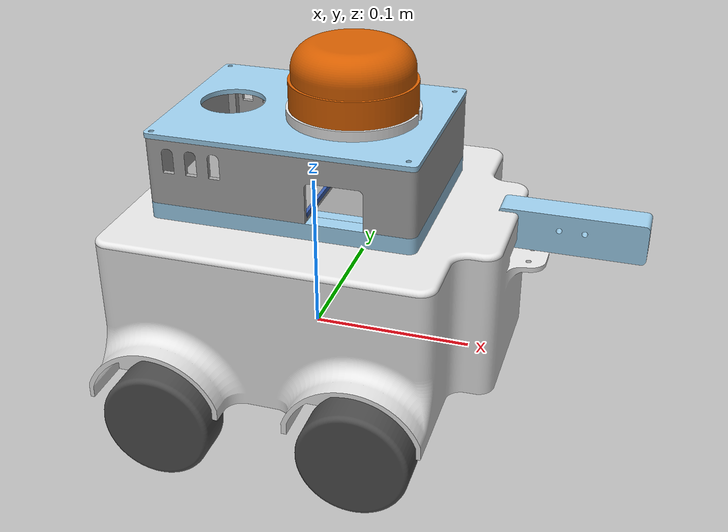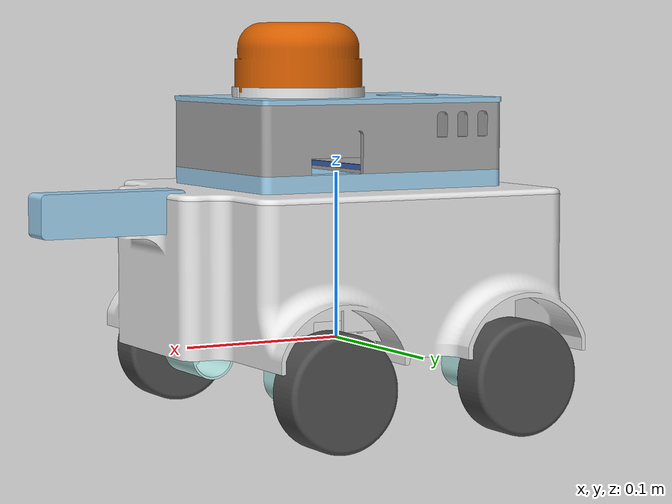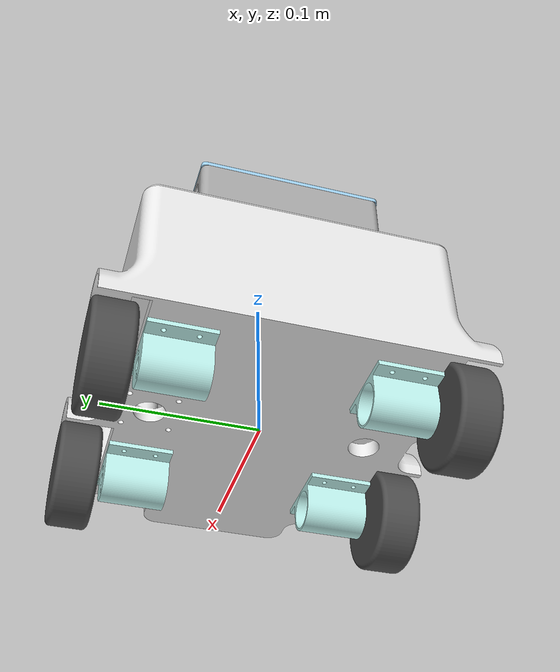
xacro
<?xml version="1.0"?>
<robot xmlns:xacro="http://www.ros.org/wiki/xacro" name="config">

  <!-- ========== CONSTANTS ========== -->
  <xacro:property name="M_PI" value="3.141592653589793" />
  <xacro:property name="wheel_mass" value="1e-09" />
  <xacro:property name="sensor_mass" value="1e-05" />

  <!-- ========== MATERIALS ========== -->
  <material name="lidar_holder_material">
    <color rgba="0.901961 0.901961 0.901961 1.0"/>
  </material>
  <material name="orin_cover_material">
    <color rgba="0.647059 0.647059 0.647059 1.0"/>
  </material>
  <material name="orin_lid_material">
    <color rgba="0.615686 0.811765 0.929412 1.0"/>
  </material>
  <material name="orin_floor_2_material">
    <color rgba="0.647059 0.647059 0.647059 1.0"/>
  </material>
  <material name="orin_floor_1_material">
    <color rgba="0.615686 0.811765 0.929412 1.0"/>
  </material>
  <material name="camera_material">
    <color rgba="0.615686 0.811765 0.929412 1.0"/>
  </material>
  <material name="motor_holder_material">
    <color rgba="0.737255 0.937255 0.917647 1.0"/>
  </material>
  <material name="board_material">
    <color rgba="0.615686 0.811765 0.929412 1.0"/>
  </material>
  <material name="base_link_material">
    <color rgba="0.901961 0.901961 0.901961 1.0"/>
  </material>
  <material name="up_plate_material">
    <color rgba="0.901961 0.901961 0.901961 1.0"/>
  </material>
  <material name="edge_material">
    <color rgba="0.231373 0.380392 0.705882 1.0"/>
  </material>
  <material name="lidar_link_material">
    <color rgba="0.262745 0.282353 0.301961 1.0"/>
  </material>
  <material name="wheel_material">
    <color rgba="0.301961 0.301961 0.301961 1.0"/>
  </material>

  <!-- ========== BASE LINK ========== -->
  <link name="base_link">
    <inertial>
      <origin xyz="0 0 0" rpy="0 0 0"/>
      <mass value="1e-09"/>
      <inertia ixx="1e-09" ixy="0" ixz="0" iyy="1e-09" iyz="0" izz="1e-09"/>
    </inertial>

    <!-- Lidar Holder -->
    <visual>
      <origin xyz="0.026071 -7.10678e-05 0.146" rpy="-9.86076e-32 9.86076e-32 -${M_PI}"/>
      <geometry>
        <mesh filename="package://puppet/meshes/lidar_holder.stl"/>
      </geometry>
      <material name="lidar_holder_material"/>
    </visual>
    <collision>
      <origin xyz="0.026071 -7.10678e-05 0.146" rpy="-9.86076e-32 9.86076e-32 -${M_PI}"/>
      <geometry>
        <mesh filename="package://puppet/meshes/lidar_holder.stl"/>
      </geometry>
    </collision>

    <!-- Orin Cover -->
    <visual>
      <origin xyz="-0.00942666 -0.0174236 0.093" rpy="0 0 ${M_PI}"/>
      <geometry>
        <mesh filename="package://puppet/meshes/orin_cover.stl"/>
      </geometry>
      <material name="orin_cover_material"/>
    </visual>
    <collision>
      <origin xyz="-0.00942666 -0.0174236 0.093" rpy="0 0 ${M_PI}"/>
      <geometry>
        <mesh filename="package://puppet/meshes/orin_cover.stl"/>
      </geometry>
    </collision>

    <!-- Orin Lid -->
    <visual>
      <origin xyz="0.0204439 -0.00516532 0.143" rpy="0 0 ${M_PI}"/>
      <geometry>
        <mesh filename="package://puppet/meshes/orin_lid.stl"/>
      </geometry>
      <material name="orin_lid_material"/>
    </visual>
    <collision>
      <origin xyz="0.0204439 -0.00516532 0.143" rpy="0 0 ${M_PI}"/>
      <geometry>
        <mesh filename="package://puppet/meshes/orin_lid.stl"/>
      </geometry>
    </collision>

    <!-- Orin Floor 2 -->
    <visual>
      <origin xyz="-0.00942666 -0.0174236 0.093" rpy="0 0 ${M_PI}"/>
      <geometry>
        <mesh filename="package://puppet/meshes/orin_floor_2.stl"/>
      </geometry>
      <material name="orin_floor_2_material"/>
    </visual>
    <collision>
      <origin xyz="-0.00942666 -0.0174236 0.093" rpy="0 0 ${M_PI}"/>
      <geometry>
        <mesh filename="package://puppet/meshes/orin_floor_2.stl"/>
      </geometry>
    </collision>

    <!-- Orin Floor 1 -->
    <visual>
      <origin xyz="-0.00942666 -0.0174236 0.093" rpy="0 0 ${M_PI}"/>
      <geometry>
        <mesh filename="package://puppet/meshes/orin_floor_1.stl"/>
      </geometry>
      <material name="orin_floor_1_material"/>
    </visual>
    <collision>
      <origin xyz="-0.00942666 -0.0174236 0.093" rpy="0 0 ${M_PI}"/>
      <geometry>
        <mesh filename="package://puppet/meshes/orin_floor_1.stl"/>
      </geometry>
    </collision>

    <!-- Motor Holder (Front Right) -->
    <visual>
      <origin xyz="0.06 -0.0877 -0.0141" rpy="${M_PI/2} 0 ${M_PI}"/>
      <geometry>
        <mesh filename="package://puppet/meshes/motor_holder.stl"/>
      </geometry>
      <material name="motor_holder_material"/>
    </visual>
    <collision>
      <origin xyz="0.06 -0.0877 -0.0141" rpy="${M_PI/2} 0 ${M_PI}"/>
      <geometry>
        <mesh filename="package://puppet/meshes/motor_holder.stl"/>
      </geometry>
    </collision>

    <!-- Motor Holder (Front Left) -->
    <visual>
      <origin xyz="-0.06 -0.0877 -0.0141" rpy="${M_PI/2} 0 ${M_PI}"/>
      <geometry>
        <mesh filename="package://puppet/meshes/motor_holder.stl"/>
      </geometry>
      <material name="motor_holder_material"/>
    </visual>
    <collision>
      <origin xyz="-0.06 -0.0877 -0.0141" rpy="${M_PI/2} 0 ${M_PI}"/>
      <geometry>
        <mesh filename="package://puppet/meshes/motor_holder.stl"/>
      </geometry>
    </collision>

    <!-- Motor Holder (Rear Right) -->
    <visual>
      <origin xyz="-0.06 0.0877 -0.0141" rpy="${M_PI/2} 0 0"/>
      <geometry>
        <mesh filename="package://puppet/meshes/motor_holder.stl"/>
      </geometry>
      <material name="motor_holder_material"/>
    </visual>
    <collision>
      <origin xyz="-0.06 0.0877 -0.0141" rpy="${M_PI/2} 0 0"/>
      <geometry>
        <mesh filename="package://puppet/meshes/motor_holder.stl"/>
      </geometry>
    </collision>

    <!-- Motor Holder (Rear Left) -->
    <visual>
      <origin xyz="0.06 0.0877 -0.0141" rpy="${M_PI/2} 0 0"/>
      <geometry>
        <mesh filename="package://puppet/meshes/motor_holder.stl"/>
      </geometry>
      <material name="motor_holder_material"/>
    </visual>
    <collision>
      <origin xyz="0.06 0.0877 -0.0141" rpy="${M_PI/2} 0 0"/>
      <geometry>
        <mesh filename="package://puppet/meshes/motor_holder.stl"/>
      </geometry>
    </collision>

    <!-- Board -->
    <visual>
      <origin xyz="-0.0235 -1.38778e-17 0.053" rpy="${M_PI} 0 ${M_PI}"/>
      <geometry>
        <mesh filename="package://puppet/meshes/board.stl"/>
      </geometry>
      <material name="board_material"/>
    </visual>
    <collision>
      <origin xyz="-0.0235 -1.38778e-17 0.053" rpy="${M_PI} 0 ${M_PI}"/>
      <geometry>
        <mesh filename="package://puppet/meshes/board.stl"/>
      </geometry>
    </collision>

    <!-- Base Plate -->
    <visual>
      <origin xyz="0 0 0.007" rpy="0 0 0"/>
      <geometry>
        <mesh filename="package://puppet/meshes/base_link.stl"/>
      </geometry>
      <material name="base_link_material"/>
    </visual>
    <collision>
      <origin xyz="0 0 0.007" rpy="0 0 0"/>
      <geometry>
        <mesh filename="package://puppet/meshes/base_link.stl"/>
      </geometry>
    </collision>

    <!-- Up Plate -->
    <visual>
      <origin xyz="7.10678e-05 -7.10678e-05 0.09" rpy="0 0 0"/>
      <geometry>
        <mesh filename="package://puppet/meshes/up_plate.stl"/>
      </geometry>
      <material name="up_plate_material"/>
    </visual>
    <collision>
      <origin xyz="7.10678e-05 -7.10678e-05 0.09" rpy="0 0 0"/>
      <geometry>
        <mesh filename="package://puppet/meshes/up_plate.stl"/>
      </geometry>
    </collision>

    <!-- Edge -->
    <visual>
      <origin xyz="0.0396687 0.0172814 0.093" rpy="0 0 0"/>
      <geometry>
        <mesh filename="package://puppet/meshes/edge.stl"/>
      </geometry>
      <material name="edge_material"/>
    </visual>
    <collision>
      <origin xyz="0.0396687 0.0172814 0.093" rpy="0 0 0"/>
      <geometry>
        <mesh filename="package://puppet/meshes/edge.stl"/>
      </geometry>
    </collision>
  </link>

  <!-- ========== WHEEL MACRO ========== -->
  <xacro:macro name="wheel" params="name suffix xyz_origin rpy_origin xyz_visual rpy_visual">
    <link name="${name}">
      <inertial>
        <origin xyz="0 0 0" rpy="0 0 0"/>
        <mass value="${wheel_mass}"/>
        <inertia ixx="1e-09" ixy="0" ixz="0" iyy="1e-09" iyz="0" izz="1e-09"/>
      </inertial>

      <visual>
        <origin xyz="${xyz_visual}" rpy="${rpy_visual}"/>
        <geometry>
          <mesh filename="package://puppet/meshes/wheel.stl"/>
        </geometry>
        <material name="wheel_material"/>
      </visual>

      <collision>
        <origin xyz="${xyz_visual}" rpy="${rpy_visual}"/>
        <geometry>
          <mesh filename="package://puppet/meshes/wheel.stl"/>
        </geometry>
      </collision>
    </link>

    <joint name="${suffix}" type="continuous">
      <origin xyz="${xyz_origin}" rpy="${rpy_origin}"/>
      <parent link="base_link"/>
      <child link="${name}"/>
      <axis xyz="0 0 1"/>
      <limit effort="10" velocity="10"/>
    </joint>
  </xacro:macro>

  <!-- ========== WHEEL INSTANCES ========== -->
  <!-- Sửa tên joint và bánh xe theo yêu cầu -->
  <!-- Rear Right Wheel -->
  <xacro:wheel name="wheel_rear_right" suffix="rear_right_wheel_joint"
               xyz_origin="-0.06 -0.0927 -0.0141" rpy_origin="${M_PI/2} 0 ${M_PI}"
               xyz_visual="0 -1.73472e-18 -0.026" rpy_visual="-${M_PI/2} 0 0"/>

  <!-- Front Right Wheel -->
  <xacro:wheel name="wheel_front_right" suffix="front_right_wheel_joint"
               xyz_origin="0.06 -0.0927 -0.0141" rpy_origin="${M_PI/2} 0.0383117 ${M_PI}"
               xyz_visual="0 -3.46945e-18 -0.026" rpy_visual="-${M_PI/2} 0 -8.48055e-18"/>

  <!-- Front Left Wheel -->
  <xacro:wheel name="wheel_front_left" suffix="front_left_wheel_joint"
               xyz_origin="0.06 0.0927 -0.0141" rpy_origin="-${M_PI/2} 0 ${M_PI}"
               xyz_visual="0 1.73472e-18 0" rpy_visual="${M_PI/2} 0 0"/>

  <!-- Rear Left Wheel -->
  <xacro:wheel name="wheel_rear_left" suffix="rear_left_wheel_joint"
               xyz_origin="-0.06 0.0927 -0.0141" rpy_origin="-${M_PI/2} 0 ${M_PI}"
               xyz_visual="0 1.73472e-18 0" rpy_visual="${M_PI/2} 0 0"/>

  <!-- ========== SENSOR MACRO ========== -->
  <xacro:macro name="sensor" params="name type xyz_origin rpy_origin">
    <link name="${name}">
      <inertial>
        <origin xyz="0 0 0" rpy="0 0 0"/>
        <mass value="${sensor_mass}"/>
        <inertia ixx="1e-06" ixy="0" ixz="0" iyy="1e-06" iyz="0" izz="1e-06"/>
      </inertial>

      <visual>
        <origin xyz="0 0 0" rpy="0 0 0"/>
        <geometry>
          <mesh filename="package://puppet/meshes/${type}.stl"/>
        </geometry>
        <material name="${type}_material"/>
      </visual>

      <collision>
        <origin xyz="0 0 0" rpy="0 0 0"/>
        <geometry>
          <mesh filename="package://puppet/meshes/${type}.stl"/>
        </geometry>
      </collision>
    </link>

    <joint name="${name}_joint" type="fixed">
      <origin xyz="${xyz_origin}" rpy="${rpy_origin}"/>
      <parent link="base_link"/>
      <child link="${name}"/>
    </joint>
  </xacro:macro>

  <!-- ========== SENSOR INSTANCES ========== -->
  <xacro:sensor name="laser_frame" type="laser_frame"
                xyz_origin="0.026071 -7.10678e-05 0.149"
                rpy_origin="-2.08167e-16 -2.46519e-32 5.47382e-48"/>

<xacro:sensor name="camera_link" type="camera"
              xyz_origin="0.15 0.00694306 0.07"
              rpy_origin="0 0 0"/>  <!-- Hoàn toàn song song với XY -->

</robot>
